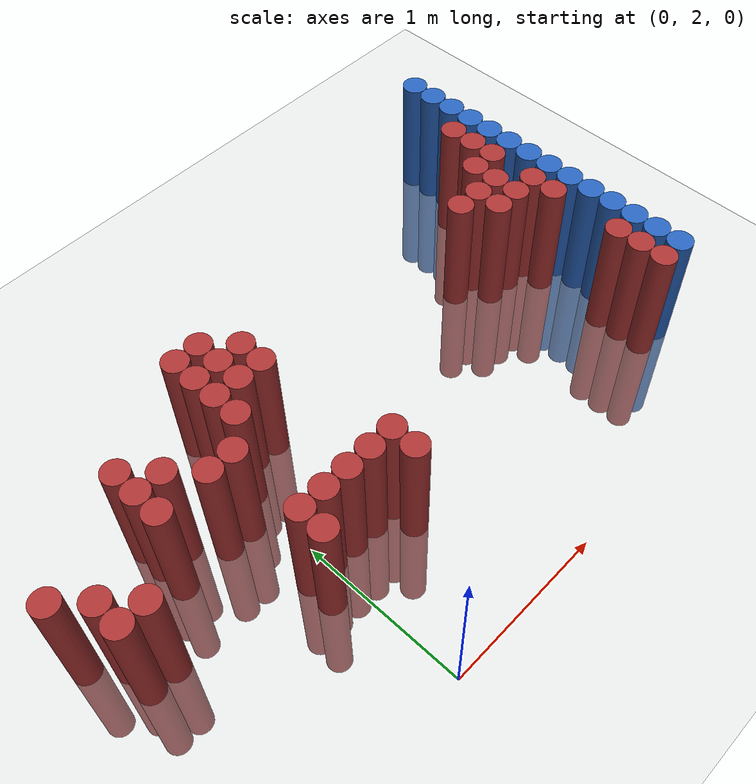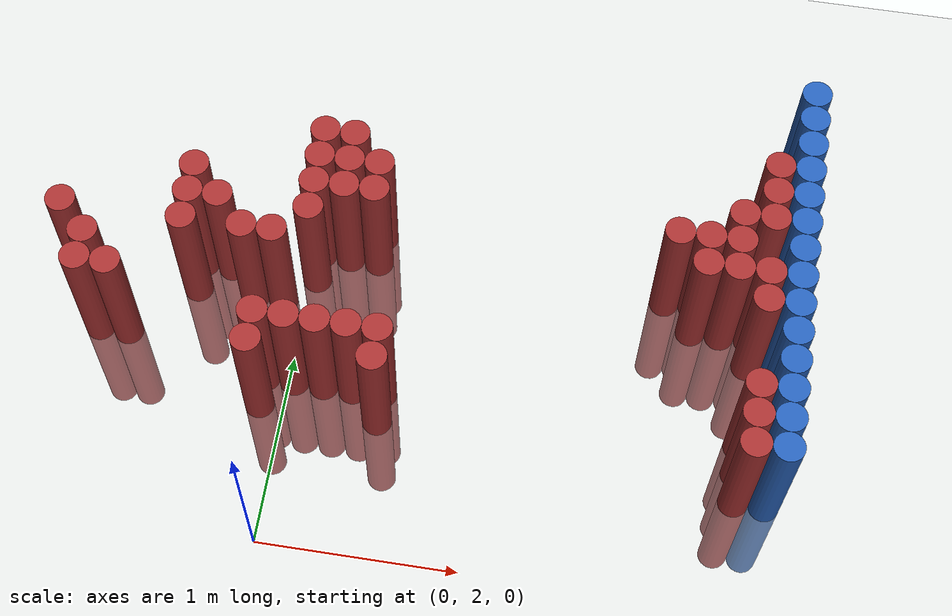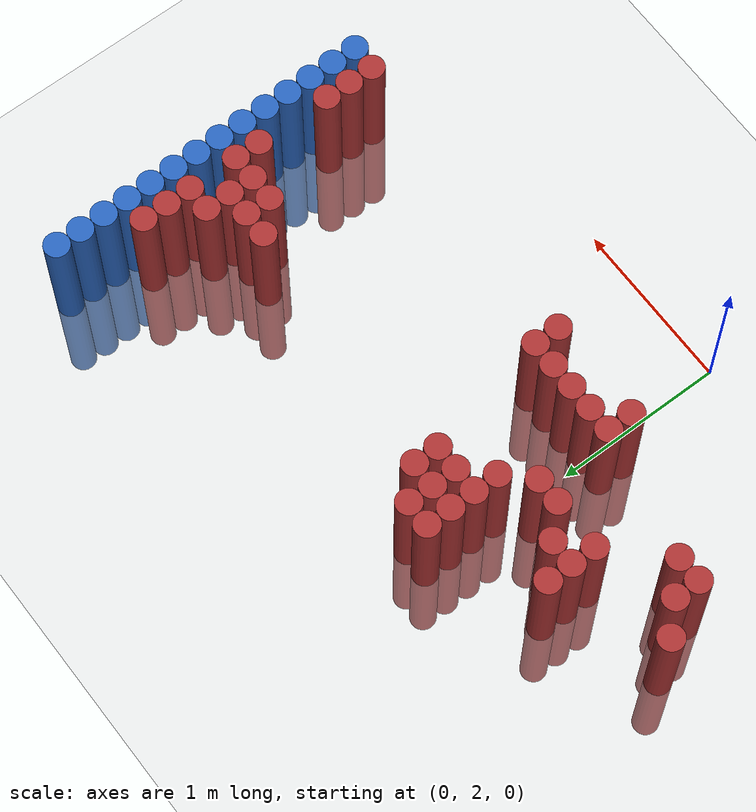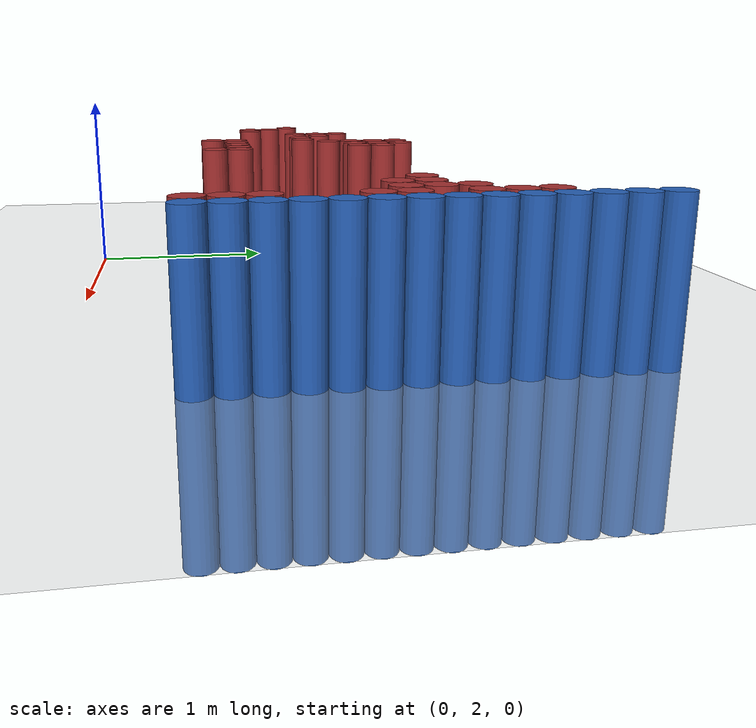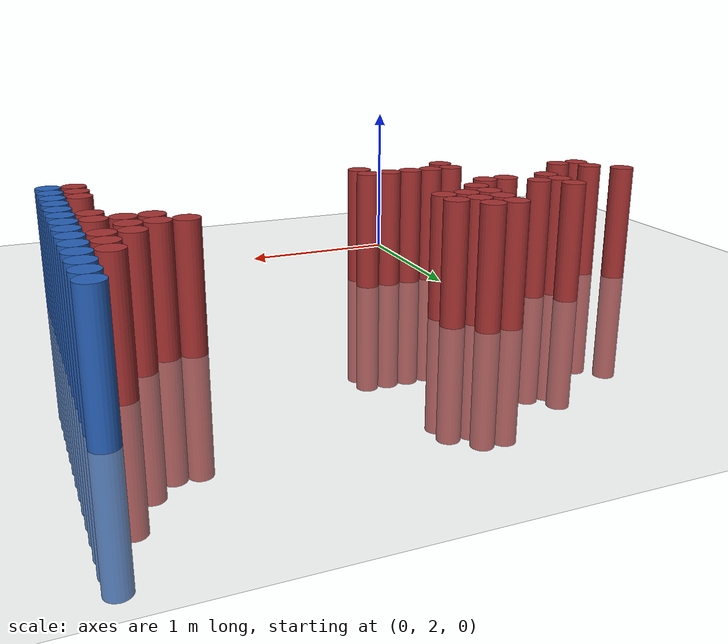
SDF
<sdf version="1.6">
 <world name="default">
  <model name="ground_plane">
   <static>1</static>
   <link name="link">
    <collision name="collision">
     <geometry><plane><normal>0 0 1</normal><size>100 100</size></plane></geometry>
     <surface><friction><ode><mu>100</mu><mu2>50</mu2></ode></friction></surface>
    </collision>
    <visual name="visual">
     <cast_shadows>0</cast_shadows>
     <geometry><plane><normal>0 0 1</normal><size>100 100</size></plane></geometry>
     <material>
      <script><uri>file://media/materials/scripts/gazebo.material</uri><name>Gazebo/Grey</name></script>
     </material>
    </visual>
   </link>
  </model>
  <model name="unit_cylinder_154">
   <static>1</static>
   <pose>-1.175000 3.325000 0.000000 0.000000 0.000000 0.000000</pose>
   <link name="link">
    <inertial>
     <mass>1</mass>
     <inertia><ixx>0.145833</ixx><ixy>0</ixy><ixz>0</ixz><iyy>0.145833</iyy><iyz>0</iyz><izz>0.125</izz></inertia>
    </inertial>
    <collision name="collision">
     <geometry><cylinder><radius>0.075000</radius><length>1.5</length></cylinder></geometry>
    </collision>
    <visual name="visual">
     <geometry><cylinder><radius>0.075000</radius><length>1.5</length></cylinder></geometry>
     <material>
      <ambient>0.648000 0.192000 0.192000 1</ambient>
      <diffuse>0.648000 0.192000 0.192000 1</diffuse>
     </material>
     <material>
      <script><name>Gazebo/Grey</name><uri>file://media/materials/scripts/gazebo.material</uri></script>
     </material>
    </visual>
   </link>
  </model>
  <model name="unit_cylinder_155">
   <static>1</static>
   <pose>-1.025000 3.025000 0.000000 0.000000 0.000000 0.000000</pose>
   <link name="link">
    <inertial>
     <mass>1</mass>
     <inertia><ixx>0.145833</ixx><ixy>0</ixy><ixz>0</ixz><iyy>0.145833</iyy><iyz>0</iyz><izz>0.125</izz></inertia>
    </inertial>
    <collision name="collision">
     <geometry><cylinder><radius>0.075000</radius><length>1.5</length></cylinder></geometry>
    </collision>
    <visual name="visual">
     <geometry><cylinder><radius>0.075000</radius><length>1.5</length></cylinder></geometry>
     <material>
      <ambient>0.648000 0.192000 0.192000 1</ambient>
      <diffuse>0.648000 0.192000 0.192000 1</diffuse>
     </material>
     <material>
      <script><name>Gazebo/Grey</name><uri>file://media/materials/scripts/gazebo.material</uri></script>
     </material>
    </visual>
   </link>
  </model>
  <model name="unit_cylinder_156">
   <static>1</static>
   <pose>-1.025000 3.175000 0.000000 0.000000 0.000000 0.000000</pose>
   <link name="link">
    <inertial>
     <mass>1</mass>
     <inertia><ixx>0.145833</ixx><ixy>0</ixy><ixz>0</ixz><iyy>0.145833</iyy><iyz>0</iyz><izz>0.125</izz></inertia>
    </inertial>
    <collision name="collision">
     <geometry><cylinder><radius>0.075000</radius><length>1.5</length></cylinder></geometry>
    </collision>
    <visual name="visual">
     <geometry><cylinder><radius>0.075000</radius><length>1.5</length></cylinder></geometry>
     <material>
      <ambient>0.648000 0.192000 0.192000 1</ambient>
      <diffuse>0.648000 0.192000 0.192000 1</diffuse>
     </material>
     <material>
      <script><name>Gazebo/Grey</name><uri>file://media/materials/scripts/gazebo.material</uri></script>
     </material>
    </visual>
   </link>
  </model>
  <model name="unit_cylinder_157">
   <static>1</static>
   <pose>-0.875000 3.025000 0.000000 0.000000 0.000000 0.000000</pose>
   <link name="link">
    <inertial>
     <mass>1</mass>
     <inertia><ixx>0.145833</ixx><ixy>0</ixy><ixz>0</ixz><iyy>0.145833</iyy><iyz>0</iyz><izz>0.125</izz></inertia>
    </inertial>
    <collision name="collision">
     <geometry><cylinder><radius>0.075000</radius><length>1.5</length></cylinder></geometry>
    </collision>
    <visual name="visual">
     <geometry><cylinder><radius>0.075000</radius><length>1.5</length></cylinder></geometry>
     <material>
      <ambient>0.648000 0.192000 0.192000 1</ambient>
      <diffuse>0.648000 0.192000 0.192000 1</diffuse>
     </material>
     <material>
      <script><name>Gazebo/Grey</name><uri>file://media/materials/scripts/gazebo.material</uri></script>
     </material>
    </visual>
   </link>
  </model>
  <model name="unit_cylinder_161">
   <static>1</static>
   <pose>-0.575000 3.325000 0.000000 0.000000 0.000000 0.000000</pose>
   <link name="link">
    <inertial>
     <mass>1</mass>
     <inertia><ixx>0.145833</ixx><ixy>0</ixy><ixz>0</ixz><iyy>0.145833</iyy><iyz>0</iyz><izz>0.125</izz></inertia>
    </inertial>
    <collision name="collision">
     <geometry><cylinder><radius>0.075000</radius><length>1.5</length></cylinder></geometry>
    </collision>
    <visual name="visual">
     <geometry><cylinder><radius>0.075000</radius><length>1.5</length></cylinder></geometry>
     <material>
      <ambient>0.648000 0.192000 0.192000 1</ambient>
      <diffuse>0.648000 0.192000 0.192000 1</diffuse>
     </material>
     <material>
      <script><name>Gazebo/Grey</name><uri>file://media/materials/scripts/gazebo.material</uri></script>
     </material>
    </visual>
   </link>
  </model>
  <model name="unit_cylinder_162">
   <static>1</static>
   <pose>-0.575000 3.475000 0.000000 0.000000 0.000000 0.000000</pose>
   <link name="link">
    <inertial>
     <mass>1</mass>
     <inertia><ixx>0.145833</ixx><ixy>0</ixy><ixz>0</ixz><iyy>0.145833</iyy><iyz>0</iyz><izz>0.125</izz></inertia>
    </inertial>
    <collision name="collision">
     <geometry><cylinder><radius>0.075000</radius><length>1.5</length></cylinder></geometry>
    </collision>
    <visual name="visual">
     <geometry><cylinder><radius>0.075000</radius><length>1.5</length></cylinder></geometry>
     <material>
      <ambient>0.648000 0.192000 0.192000 1</ambient>
      <diffuse>0.648000 0.192000 0.192000 1</diffuse>
     </material>
     <material>
      <script><name>Gazebo/Grey</name><uri>file://media/materials/scripts/gazebo.material</uri></script>
     </material>
    </visual>
   </link>
  </model>
  <model name="unit_cylinder_163">
   <static>1</static>
   <pose>-0.575000 3.625000 0.000000 0.000000 0.000000 0.000000</pose>
   <link name="link">
    <inertial>
     <mass>1</mass>
     <inertia><ixx>0.145833</ixx><ixy>0</ixy><ixz>0</ixz><iyy>0.145833</iyy><iyz>0</iyz><izz>0.125</izz></inertia>
    </inertial>
    <collision name="collision">
     <geometry><cylinder><radius>0.075000</radius><length>1.5</length></cylinder></geometry>
    </collision>
    <visual name="visual">
     <geometry><cylinder><radius>0.075000</radius><length>1.5</length></cylinder></geometry>
     <material>
      <ambient>0.648000 0.192000 0.192000 1</ambient>
      <diffuse>0.648000 0.192000 0.192000 1</diffuse>
     </material>
     <material>
      <script><name>Gazebo/Grey</name><uri>file://media/materials/scripts/gazebo.material</uri></script>
     </material>
    </visual>
   </link>
  </model>
  <model name="unit_cylinder_165">
   <static>1</static>
   <pose>-0.425000 3.475000 0.000000 0.000000 0.000000 0.000000</pose>
   <link name="link">
    <inertial>
     <mass>1</mass>
     <inertia><ixx>0.145833</ixx><ixy>0</ixy><ixz>0</ixz><iyy>0.145833</iyy><iyz>0</iyz><izz>0.125</izz></inertia>
    </inertial>
    <collision name="collision">
     <geometry><cylinder><radius>0.075000</radius><length>1.5</length></cylinder></geometry>
    </collision>
    <visual name="visual">
     <geometry><cylinder><radius>0.075000</radius><length>1.5</length></cylinder></geometry>
     <material>
      <ambient>0.648000 0.192000 0.192000 1</ambient>
      <diffuse>0.648000 0.192000 0.192000 1</diffuse>
     </material>
     <material>
      <script><name>Gazebo/Grey</name><uri>file://media/materials/scripts/gazebo.material</uri></script>
     </material>
    </visual>
   </link>
  </model>
  <model name="unit_cylinder_166">
   <static>1</static>
   <pose>-0.275000 3.325000 0.000000 0.000000 0.000000 0.000000</pose>
   <link name="link">
    <inertial>
     <mass>1</mass>
     <inertia><ixx>0.145833</ixx><ixy>0</ixy><ixz>0</ixz><iyy>0.145833</iyy><iyz>0</iyz><izz>0.125</izz></inertia>
    </inertial>
    <collision name="collision">
     <geometry><cylinder><radius>0.075000</radius><length>1.5</length></cylinder></geometry>
    </collision>
    <visual name="visual">
     <geometry><cylinder><radius>0.075000</radius><length>1.5</length></cylinder></geometry>
     <material>
      <ambient>0.648000 0.192000 0.192000 1</ambient>
      <diffuse>0.648000 0.192000 0.192000 1</diffuse>
     </material>
     <material>
      <script><name>Gazebo/Grey</name><uri>file://media/materials/scripts/gazebo.material</uri></script>
     </material>
    </visual>
   </link>
  </model>
  <model name="unit_cylinder_168">
   <static>1</static>
   <pose>-0.125000 2.725000 0.000000 0.000000 0.000000 0.000000</pose>
   <link name="link">
    <inertial>
     <mass>1</mass>
     <inertia><ixx>0.145833</ixx><ixy>0</ixy><ixz>0</ixz><iyy>0.145833</iyy><iyz>0</iyz><izz>0.125</izz></inertia>
    </inertial>
    <collision name="collision">
     <geometry><cylinder><radius>0.075000</radius><length>1.5</length></cylinder></geometry>
    </collision>
    <visual name="visual">
     <geometry><cylinder><radius>0.075000</radius><length>1.5</length></cylinder></geometry>
     <material>
      <ambient>0.648000 0.192000 0.192000 1</ambient>
      <diffuse>0.648000 0.192000 0.192000 1</diffuse>
     </material>
     <material>
      <script><name>Gazebo/Grey</name><uri>file://media/materials/scripts/gazebo.material</uri></script>
     </material>
    </visual>
   </link>
  </model>
  <model name="unit_cylinder_169">
   <static>1</static>
   <pose>-0.125000 2.875000 0.000000 0.000000 0.000000 0.000000</pose>
   <link name="link">
    <inertial>
     <mass>1</mass>
     <inertia><ixx>0.145833</ixx><ixy>0</ixy><ixz>0</ixz><iyy>0.145833</iyy><iyz>0</iyz><izz>0.125</izz></inertia>
    </inertial>
    <collision name="collision">
     <geometry><cylinder><radius>0.075000</radius><length>1.5</length></cylinder></geometry>
    </collision>
    <visual name="visual">
     <geometry><cylinder><radius>0.075000</radius><length>1.5</length></cylinder></geometry>
     <material>
      <ambient>0.648000 0.192000 0.192000 1</ambient>
      <diffuse>0.648000 0.192000 0.192000 1</diffuse>
     </material>
     <material>
      <script><name>Gazebo/Grey</name><uri>file://media/materials/scripts/gazebo.material</uri></script>
     </material>
    </visual>
   </link>
  </model>
  <model name="unit_cylinder_170">
   <static>1</static>
   <pose>-0.125000 3.325000 0.000000 0.000000 0.000000 0.000000</pose>
   <link name="link">
    <inertial>
     <mass>1</mass>
     <inertia><ixx>0.145833</ixx><ixy>0</ixy><ixz>0</ixz><iyy>0.145833</iyy><iyz>0</iyz><izz>0.125</izz></inertia>
    </inertial>
    <collision name="collision">
     <geometry><cylinder><radius>0.075000</radius><length>1.5</length></cylinder></geometry>
    </collision>
    <visual name="visual">
     <geometry><cylinder><radius>0.075000</radius><length>1.5</length></cylinder></geometry>
     <material>
      <ambient>0.648000 0.192000 0.192000 1</ambient>
      <diffuse>0.648000 0.192000 0.192000 1</diffuse>
     </material>
     <material>
      <script><name>Gazebo/Grey</name><uri>file://media/materials/scripts/gazebo.material</uri></script>
     </material>
    </visual>
   </link>
  </model>
  <model name="unit_cylinder_172">
   <static>1</static>
   <pose>0.025000 2.875000 0.000000 0.000000 0.000000 0.000000</pose>
   <link name="link">
    <inertial>
     <mass>1</mass>
     <inertia><ixx>0.145833</ixx><ixy>0</ixy><ixz>0</ixz><iyy>0.145833</iyy><iyz>0</iyz><izz>0.125</izz></inertia>
    </inertial>
    <collision name="collision">
     <geometry><cylinder><radius>0.075000</radius><length>1.5</length></cylinder></geometry>
    </collision>
    <visual name="visual">
     <geometry><cylinder><radius>0.075000</radius><length>1.5</length></cylinder></geometry>
     <material>
      <ambient>0.648000 0.192000 0.192000 1</ambient>
      <diffuse>0.648000 0.192000 0.192000 1</diffuse>
     </material>
     <material>
      <script><name>Gazebo/Grey</name><uri>file://media/materials/scripts/gazebo.material</uri></script>
     </material>
    </visual>
   </link>
  </model>
  <model name="unit_cylinder_173">
   <static>1</static>
   <pose>0.025000 3.475000 0.000000 0.000000 0.000000 0.000000</pose>
   <link name="link">
    <inertial>
     <mass>1</mass>
     <inertia><ixx>0.145833</ixx><ixy>0</ixy><ixz>0</ixz><iyy>0.145833</iyy><iyz>0</iyz><izz>0.125</izz></inertia>
    </inertial>
    <collision name="collision">
     <geometry><cylinder><radius>0.075000</radius><length>1.5</length></cylinder></geometry>
    </collision>
    <visual name="visual">
     <geometry><cylinder><radius>0.075000</radius><length>1.5</length></cylinder></geometry>
     <material>
      <ambient>0.648000 0.192000 0.192000 1</ambient>
      <diffuse>0.648000 0.192000 0.192000 1</diffuse>
     </material>
     <material>
      <script><name>Gazebo/Grey</name><uri>file://media/materials/scripts/gazebo.material</uri></script>
     </material>
    </visual>
   </link>
  </model>
  <model name="unit_cylinder_174">
   <static>1</static>
   <pose>0.025000 3.625000 0.000000 0.000000 0.000000 0.000000</pose>
   <link name="link">
    <inertial>
     <mass>1</mass>
     <inertia><ixx>0.145833</ixx><ixy>0</ixy><ixz>0</ixz><iyy>0.145833</iyy><iyz>0</iyz><izz>0.125</izz></inertia>
    </inertial>
    <collision name="collision">
     <geometry><cylinder><radius>0.075000</radius><length>1.5</length></cylinder></geometry>
    </collision>
    <visual name="visual">
     <geometry><cylinder><radius>0.075000</radius><length>1.5</length></cylinder></geometry>
     <material>
      <ambient>0.648000 0.192000 0.192000 1</ambient>
      <diffuse>0.648000 0.192000 0.192000 1</diffuse>
     </material>
     <material>
      <script><name>Gazebo/Grey</name><uri>file://media/materials/scripts/gazebo.material</uri></script>
     </material>
    </visual>
   </link>
  </model>
  <model name="unit_cylinder_175">
   <static>1</static>
   <pose>0.025000 3.775000 0.000000 0.000000 0.000000 0.000000</pose>
   <link name="link">
    <inertial>
     <mass>1</mass>
     <inertia><ixx>0.145833</ixx><ixy>0</ixy><ixz>0</ixz><iyy>0.145833</iyy><iyz>0</iyz><izz>0.125</izz></inertia>
    </inertial>
    <collision name="collision">
     <geometry><cylinder><radius>0.075000</radius><length>1.5</length></cylinder></geometry>
    </collision>
    <visual name="visual">
     <geometry><cylinder><radius>0.075000</radius><length>1.5</length></cylinder></geometry>
     <material>
      <ambient>0.648000 0.192000 0.192000 1</ambient>
      <diffuse>0.648000 0.192000 0.192000 1</diffuse>
     </material>
     <material>
      <script><name>Gazebo/Grey</name><uri>file://media/materials/scripts/gazebo.material</uri></script>
     </material>
    </visual>
   </link>
  </model>
  <model name="unit_cylinder_176">
   <static>1</static>
   <pose>0.025000 3.925000 0.000000 0.000000 0.000000 0.000000</pose>
   <link name="link">
    <inertial>
     <mass>1</mass>
     <inertia><ixx>0.145833</ixx><ixy>0</ixy><ixz>0</ixz><iyy>0.145833</iyy><iyz>0</iyz><izz>0.125</izz></inertia>
    </inertial>
    <collision name="collision">
     <geometry><cylinder><radius>0.075000</radius><length>1.5</length></cylinder></geometry>
    </collision>
    <visual name="visual">
     <geometry><cylinder><radius>0.075000</radius><length>1.5</length></cylinder></geometry>
     <material>
      <ambient>0.648000 0.192000 0.192000 1</ambient>
      <diffuse>0.648000 0.192000 0.192000 1</diffuse>
     </material>
     <material>
      <script><name>Gazebo/Grey</name><uri>file://media/materials/scripts/gazebo.material</uri></script>
     </material>
    </visual>
   </link>
  </model>
  <model name="unit_cylinder_178">
   <static>1</static>
   <pose>0.175000 2.875000 0.000000 0.000000 0.000000 0.000000</pose>
   <link name="link">
    <inertial>
     <mass>1</mass>
     <inertia><ixx>0.145833</ixx><ixy>0</ixy><ixz>0</ixz><iyy>0.145833</iyy><iyz>0</iyz><izz>0.125</izz></inertia>
    </inertial>
    <collision name="collision">
     <geometry><cylinder><radius>0.075000</radius><length>1.5</length></cylinder></geometry>
    </collision>
    <visual name="visual">
     <geometry><cylinder><radius>0.075000</radius><length>1.5</length></cylinder></geometry>
     <material>
      <ambient>0.648000 0.192000 0.192000 1</ambient>
      <diffuse>0.648000 0.192000 0.192000 1</diffuse>
     </material>
     <material>
      <script><name>Gazebo/Grey</name><uri>file://media/materials/scripts/gazebo.material</uri></script>
     </material>
    </visual>
   </link>
  </model>
  <model name="unit_cylinder_179">
   <static>1</static>
   <pose>0.175000 3.625000 0.000000 0.000000 0.000000 0.000000</pose>
   <link name="link">
    <inertial>
     <mass>1</mass>
     <inertia><ixx>0.145833</ixx><ixy>0</ixy><ixz>0</ixz><iyy>0.145833</iyy><iyz>0</iyz><izz>0.125</izz></inertia>
    </inertial>
    <collision name="collision">
     <geometry><cylinder><radius>0.075000</radius><length>1.5</length></cylinder></geometry>
    </collision>
    <visual name="visual">
     <geometry><cylinder><radius>0.075000</radius><length>1.5</length></cylinder></geometry>
     <material>
      <ambient>0.648000 0.192000 0.192000 1</ambient>
      <diffuse>0.648000 0.192000 0.192000 1</diffuse>
     </material>
     <material>
      <script><name>Gazebo/Grey</name><uri>file://media/materials/scripts/gazebo.material</uri></script>
     </material>
    </visual>
   </link>
  </model>
  <model name="unit_cylinder_180">
   <static>1</static>
   <pose>0.175000 3.775000 0.000000 0.000000 0.000000 0.000000</pose>
   <link name="link">
    <inertial>
     <mass>1</mass>
     <inertia><ixx>0.145833</ixx><ixy>0</ixy><ixz>0</ixz><iyy>0.145833</iyy><iyz>0</iyz><izz>0.125</izz></inertia>
    </inertial>
    <collision name="collision">
     <geometry><cylinder><radius>0.075000</radius><length>1.5</length></cylinder></geometry>
    </collision>
    <visual name="visual">
     <geometry><cylinder><radius>0.075000</radius><length>1.5</length></cylinder></geometry>
     <material>
      <ambient>0.648000 0.192000 0.192000 1</ambient>
      <diffuse>0.648000 0.192000 0.192000 1</diffuse>
     </material>
     <material>
      <script><name>Gazebo/Grey</name><uri>file://media/materials/scripts/gazebo.material</uri></script>
     </material>
    </visual>
   </link>
  </model>
  <model name="unit_cylinder_181">
   <static>1</static>
   <pose>0.175000 3.925000 0.000000 0.000000 0.000000 0.000000</pose>
   <link name="link">
    <inertial>
     <mass>1</mass>
     <inertia><ixx>0.145833</ixx><ixy>0</ixy><ixz>0</ixz><iyy>0.145833</iyy><iyz>0</iyz><izz>0.125</izz></inertia>
    </inertial>
    <collision name="collision">
     <geometry><cylinder><radius>0.075000</radius><length>1.5</length></cylinder></geometry>
    </collision>
    <visual name="visual">
     <geometry><cylinder><radius>0.075000</radius><length>1.5</length></cylinder></geometry>
     <material>
      <ambient>0.648000 0.192000 0.192000 1</ambient>
      <diffuse>0.648000 0.192000 0.192000 1</diffuse>
     </material>
     <material>
      <script><name>Gazebo/Grey</name><uri>file://media/materials/scripts/gazebo.material</uri></script>
     </material>
    </visual>
   </link>
  </model>
  <model name="unit_cylinder_185">
   <static>1</static>
   <pose>0.325000 2.875000 0.000000 0.000000 0.000000 0.000000</pose>
   <link name="link">
    <inertial>
     <mass>1</mass>
     <inertia><ixx>0.145833</ixx><ixy>0</ixy><ixz>0</ixz><iyy>0.145833</iyy><iyz>0</iyz><izz>0.125</izz></inertia>
    </inertial>
    <collision name="collision">
     <geometry><cylinder><radius>0.075000</radius><length>1.5</length></cylinder></geometry>
    </collision>
    <visual name="visual">
     <geometry><cylinder><radius>0.075000</radius><length>1.5</length></cylinder></geometry>
     <material>
      <ambient>0.648000 0.192000 0.192000 1</ambient>
      <diffuse>0.648000 0.192000 0.192000 1</diffuse>
     </material>
     <material>
      <script><name>Gazebo/Grey</name><uri>file://media/materials/scripts/gazebo.material</uri></script>
     </material>
    </visual>
   </link>
  </model>
  <model name="unit_cylinder_186">
   <static>1</static>
   <pose>0.325000 3.625000 0.000000 0.000000 0.000000 0.000000</pose>
   <link name="link">
    <inertial>
     <mass>1</mass>
     <inertia><ixx>0.145833</ixx><ixy>0</ixy><ixz>0</ixz><iyy>0.145833</iyy><iyz>0</iyz><izz>0.125</izz></inertia>
    </inertial>
    <collision name="collision">
     <geometry><cylinder><radius>0.075000</radius><length>1.5</length></cylinder></geometry>
    </collision>
    <visual name="visual">
     <geometry><cylinder><radius>0.075000</radius><length>1.5</length></cylinder></geometry>
     <material>
      <ambient>0.648000 0.192000 0.192000 1</ambient>
      <diffuse>0.648000 0.192000 0.192000 1</diffuse>
     </material>
     <material>
      <script><name>Gazebo/Grey</name><uri>file://media/materials/scripts/gazebo.material</uri></script>
     </material>
    </visual>
   </link>
  </model>
  <model name="unit_cylinder_187">
   <static>1</static>
   <pose>0.325000 3.775000 0.000000 0.000000 0.000000 0.000000</pose>
   <link name="link">
    <inertial>
     <mass>1</mass>
     <inertia><ixx>0.145833</ixx><ixy>0</ixy><ixz>0</ixz><iyy>0.145833</iyy><iyz>0</iyz><izz>0.125</izz></inertia>
    </inertial>
    <collision name="collision">
     <geometry><cylinder><radius>0.075000</radius><length>1.5</length></cylinder></geometry>
    </collision>
    <visual name="visual">
     <geometry><cylinder><radius>0.075000</radius><length>1.5</length></cylinder></geometry>
     <material>
      <ambient>0.648000 0.192000 0.192000 1</ambient>
      <diffuse>0.648000 0.192000 0.192000 1</diffuse>
     </material>
     <material>
      <script><name>Gazebo/Grey</name><uri>file://media/materials/scripts/gazebo.material</uri></script>
     </material>
    </visual>
   </link>
  </model>
  <model name="unit_cylinder_194">
   <static>1</static>
   <pose>0.475000 2.725000 0.000000 0.000000 0.000000 0.000000</pose>
   <link name="link">
    <inertial>
     <mass>1</mass>
     <inertia><ixx>0.145833</ixx><ixy>0</ixy><ixz>0</ixz><iyy>0.145833</iyy><iyz>0</iyz><izz>0.125</izz></inertia>
    </inertial>
    <collision name="collision">
     <geometry><cylinder><radius>0.075000</radius><length>1.5</length></cylinder></geometry>
    </collision>
    <visual name="visual">
     <geometry><cylinder><radius>0.075000</radius><length>1.5</length></cylinder></geometry>
     <material>
      <ambient>0.648000 0.192000 0.192000 1</ambient>
      <diffuse>0.648000 0.192000 0.192000 1</diffuse>
     </material>
     <material>
      <script><name>Gazebo/Grey</name><uri>file://media/materials/scripts/gazebo.material</uri></script>
     </material>
    </visual>
   </link>
  </model>
  <model name="unit_cylinder_195">
   <static>1</static>
   <pose>0.475000 2.875000 0.000000 0.000000 0.000000 0.000000</pose>
   <link name="link">
    <inertial>
     <mass>1</mass>
     <inertia><ixx>0.145833</ixx><ixy>0</ixy><ixz>0</ixz><iyy>0.145833</iyy><iyz>0</iyz><izz>0.125</izz></inertia>
    </inertial>
    <collision name="collision">
     <geometry><cylinder><radius>0.075000</radius><length>1.5</length></cylinder></geometry>
    </collision>
    <visual name="visual">
     <geometry><cylinder><radius>0.075000</radius><length>1.5</length></cylinder></geometry>
     <material>
      <ambient>0.648000 0.192000 0.192000 1</ambient>
      <diffuse>0.648000 0.192000 0.192000 1</diffuse>
     </material>
     <material>
      <script><name>Gazebo/Grey</name><uri>file://media/materials/scripts/gazebo.material</uri></script>
     </material>
    </visual>
   </link>
  </model>
  <model name="unit_cylinder_214">
   <static>1</static>
   <pose>1.825000 3.625000 0.000000 0.000000 0.000000 0.000000</pose>
   <link name="link">
    <inertial>
     <mass>1</mass>
     <inertia><ixx>0.145833</ixx><ixy>0</ixy><ixz>0</ixz><iyy>0.145833</iyy><iyz>0</iyz><izz>0.125</izz></inertia>
    </inertial>
    <collision name="collision">
     <geometry><cylinder><radius>0.075000</radius><length>1.5</length></cylinder></geometry>
    </collision>
    <visual name="visual">
     <geometry><cylinder><radius>0.075000</radius><length>1.5</length></cylinder></geometry>
     <material>
      <ambient>0.648000 0.192000 0.192000 1</ambient>
      <diffuse>0.648000 0.192000 0.192000 1</diffuse>
     </material>
     <material>
      <script><name>Gazebo/Grey</name><uri>file://media/materials/scripts/gazebo.material</uri></script>
     </material>
    </visual>
   </link>
  </model>
  <model name="unit_cylinder_215">
   <static>1</static>
   <pose>1.975000 3.475000 0.000000 0.000000 0.000000 0.000000</pose>
   <link name="link">
    <inertial>
     <mass>1</mass>
     <inertia><ixx>0.145833</ixx><ixy>0</ixy><ixz>0</ixz><iyy>0.145833</iyy><iyz>0</iyz><izz>0.125</izz></inertia>
    </inertial>
    <collision name="collision">
     <geometry><cylinder><radius>0.075000</radius><length>1.5</length></cylinder></geometry>
    </collision>
    <visual name="visual">
     <geometry><cylinder><radius>0.075000</radius><length>1.5</length></cylinder></geometry>
     <material>
      <ambient>0.648000 0.192000 0.192000 1</ambient>
      <diffuse>0.648000 0.192000 0.192000 1</diffuse>
     </material>
     <material>
      <script><name>Gazebo/Grey</name><uri>file://media/materials/scripts/gazebo.material</uri></script>
     </material>
    </visual>
   </link>
  </model>
  <model name="unit_cylinder_216">
   <static>1</static>
   <pose>1.975000 3.625000 0.000000 0.000000 0.000000 0.000000</pose>
   <link name="link">
    <inertial>
     <mass>1</mass>
     <inertia><ixx>0.145833</ixx><ixy>0</ixy><ixz>0</ixz><iyy>0.145833</iyy><iyz>0</iyz><izz>0.125</izz></inertia>
    </inertial>
    <collision name="collision">
     <geometry><cylinder><radius>0.075000</radius><length>1.5</length></cylinder></geometry>
    </collision>
    <visual name="visual">
     <geometry><cylinder><radius>0.075000</radius><length>1.5</length></cylinder></geometry>
     <material>
      <ambient>0.648000 0.192000 0.192000 1</ambient>
      <diffuse>0.648000 0.192000 0.192000 1</diffuse>
     </material>
     <material>
      <script><name>Gazebo/Grey</name><uri>file://media/materials/scripts/gazebo.material</uri></script>
     </material>
    </visual>
   </link>
  </model>
  <model name="unit_cylinder_221">
   <static>1</static>
   <pose>2.125000 3.475000 0.000000 0.000000 0.000000 0.000000</pose>
   <link name="link">
    <inertial>
     <mass>1</mass>
     <inertia><ixx>0.145833</ixx><ixy>0</ixy><ixz>0</ixz><iyy>0.145833</iyy><iyz>0</iyz><izz>0.125</izz></inertia>
    </inertial>
    <collision name="collision">
     <geometry><cylinder><radius>0.075000</radius><length>1.5</length></cylinder></geometry>
    </collision>
    <visual name="visual">
     <geometry><cylinder><radius>0.075000</radius><length>1.5</length></cylinder></geometry>
     <material>
      <ambient>0.648000 0.192000 0.192000 1</ambient>
      <diffuse>0.648000 0.192000 0.192000 1</diffuse>
     </material>
     <material>
      <script><name>Gazebo/Grey</name><uri>file://media/materials/scripts/gazebo.material</uri></script>
     </material>
    </visual>
   </link>
  </model>
  <model name="unit_cylinder_222">
   <static>1</static>
   <pose>2.125000 3.625000 0.000000 0.000000 0.000000 0.000000</pose>
   <link name="link">
    <inertial>
     <mass>1</mass>
     <inertia><ixx>0.145833</ixx><ixy>0</ixy><ixz>0</ixz><iyy>0.145833</iyy><iyz>0</iyz><izz>0.125</izz></inertia>
    </inertial>
    <collision name="collision">
     <geometry><cylinder><radius>0.075000</radius><length>1.5</length></cylinder></geometry>
    </collision>
    <visual name="visual">
     <geometry><cylinder><radius>0.075000</radius><length>1.5</length></cylinder></geometry>
     <material>
      <ambient>0.648000 0.192000 0.192000 1</ambient>
      <diffuse>0.648000 0.192000 0.192000 1</diffuse>
     </material>
     <material>
      <script><name>Gazebo/Grey</name><uri>file://media/materials/scripts/gazebo.material</uri></script>
     </material>
    </visual>
   </link>
  </model>
  <model name="unit_cylinder_223">
   <static>1</static>
   <pose>2.125000 3.775000 0.000000 0.000000 0.000000 0.000000</pose>
   <link name="link">
    <inertial>
     <mass>1</mass>
     <inertia><ixx>0.145833</ixx><ixy>0</ixy><ixz>0</ixz><iyy>0.145833</iyy><iyz>0</iyz><izz>0.125</izz></inertia>
    </inertial>
    <collision name="collision">
     <geometry><cylinder><radius>0.075000</radius><length>1.5</length></cylinder></geometry>
    </collision>
    <visual name="visual">
     <geometry><cylinder><radius>0.075000</radius><length>1.5</length></cylinder></geometry>
     <material>
      <ambient>0.648000 0.192000 0.192000 1</ambient>
      <diffuse>0.648000 0.192000 0.192000 1</diffuse>
     </material>
     <material>
      <script><name>Gazebo/Grey</name><uri>file://media/materials/scripts/gazebo.material</uri></script>
     </material>
    </visual>
   </link>
  </model>
  <model name="unit_cylinder_233">
   <static>1</static>
   <pose>2.275000 2.575000 0.000000 0.000000 0.000000 0.000000</pose>
   <link name="link">
    <inertial>
     <mass>1</mass>
     <inertia><ixx>0.145833</ixx><ixy>0</ixy><ixz>0</ixz><iyy>0.145833</iyy><iyz>0</iyz><izz>0.125</izz></inertia>
    </inertial>
    <collision name="collision">
     <geometry><cylinder><radius>0.075000</radius><length>1.5</length></cylinder></geometry>
    </collision>
    <visual name="visual">
     <geometry><cylinder><radius>0.075000</radius><length>1.5</length></cylinder></geometry>
     <material>
      <ambient>0.648000 0.192000 0.192000 1</ambient>
      <diffuse>0.648000 0.192000 0.192000 1</diffuse>
     </material>
     <material>
      <script><name>Gazebo/Grey</name><uri>file://media/materials/scripts/gazebo.material</uri></script>
     </material>
    </visual>
   </link>
  </model>
  <model name="unit_cylinder_234">
   <static>1</static>
   <pose>2.275000 2.725000 0.000000 0.000000 0.000000 0.000000</pose>
   <link name="link">
    <inertial>
     <mass>1</mass>
     <inertia><ixx>0.145833</ixx><ixy>0</ixy><ixz>0</ixz><iyy>0.145833</iyy><iyz>0</iyz><izz>0.125</izz></inertia>
    </inertial>
    <collision name="collision">
     <geometry><cylinder><radius>0.075000</radius><length>1.5</length></cylinder></geometry>
    </collision>
    <visual name="visual">
     <geometry><cylinder><radius>0.075000</radius><length>1.5</length></cylinder></geometry>
     <material>
      <ambient>0.648000 0.192000 0.192000 1</ambient>
      <diffuse>0.648000 0.192000 0.192000 1</diffuse>
     </material>
     <material>
      <script><name>Gazebo/Grey</name><uri>file://media/materials/scripts/gazebo.material</uri></script>
     </material>
    </visual>
   </link>
  </model>
  <model name="unit_cylinder_235">
   <static>1</static>
   <pose>2.275000 2.875000 0.000000 0.000000 0.000000 0.000000</pose>
   <link name="link">
    <inertial>
     <mass>1</mass>
     <inertia><ixx>0.145833</ixx><ixy>0</ixy><ixz>0</ixz><iyy>0.145833</iyy><iyz>0</iyz><izz>0.125</izz></inertia>
    </inertial>
    <collision name="collision">
     <geometry><cylinder><radius>0.075000</radius><length>1.5</length></cylinder></geometry>
    </collision>
    <visual name="visual">
     <geometry><cylinder><radius>0.075000</radius><length>1.5</length></cylinder></geometry>
     <material>
      <ambient>0.648000 0.192000 0.192000 1</ambient>
      <diffuse>0.648000 0.192000 0.192000 1</diffuse>
     </material>
     <material>
      <script><name>Gazebo/Grey</name><uri>file://media/materials/scripts/gazebo.material</uri></script>
     </material>
    </visual>
   </link>
  </model>
  <model name="unit_cylinder_236">
   <static>1</static>
   <pose>2.275000 3.325000 0.000000 0.000000 0.000000 0.000000</pose>
   <link name="link">
    <inertial>
     <mass>1</mass>
     <inertia><ixx>0.145833</ixx><ixy>0</ixy><ixz>0</ixz><iyy>0.145833</iyy><iyz>0</iyz><izz>0.125</izz></inertia>
    </inertial>
    <collision name="collision">
     <geometry><cylinder><radius>0.075000</radius><length>1.5</length></cylinder></geometry>
    </collision>
    <visual name="visual">
     <geometry><cylinder><radius>0.075000</radius><length>1.5</length></cylinder></geometry>
     <material>
      <ambient>0.648000 0.192000 0.192000 1</ambient>
      <diffuse>0.648000 0.192000 0.192000 1</diffuse>
     </material>
     <material>
      <script><name>Gazebo/Grey</name><uri>file://media/materials/scripts/gazebo.material</uri></script>
     </material>
    </visual>
   </link>
  </model>
  <model name="unit_cylinder_237">
   <static>1</static>
   <pose>2.275000 3.475000 0.000000 0.000000 0.000000 0.000000</pose>
   <link name="link">
    <inertial>
     <mass>1</mass>
     <inertia><ixx>0.145833</ixx><ixy>0</ixy><ixz>0</ixz><iyy>0.145833</iyy><iyz>0</iyz><izz>0.125</izz></inertia>
    </inertial>
    <collision name="collision">
     <geometry><cylinder><radius>0.075000</radius><length>1.5</length></cylinder></geometry>
    </collision>
    <visual name="visual">
     <geometry><cylinder><radius>0.075000</radius><length>1.5</length></cylinder></geometry>
     <material>
      <ambient>0.648000 0.192000 0.192000 1</ambient>
      <diffuse>0.648000 0.192000 0.192000 1</diffuse>
     </material>
     <material>
      <script><name>Gazebo/Grey</name><uri>file://media/materials/scripts/gazebo.material</uri></script>
     </material>
    </visual>
   </link>
  </model>
  <model name="unit_cylinder_238">
   <static>1</static>
   <pose>2.275000 3.775000 0.000000 0.000000 0.000000 0.000000</pose>
   <link name="link">
    <inertial>
     <mass>1</mass>
     <inertia><ixx>0.145833</ixx><ixy>0</ixy><ixz>0</ixz><iyy>0.145833</iyy><iyz>0</iyz><izz>0.125</izz></inertia>
    </inertial>
    <collision name="collision">
     <geometry><cylinder><radius>0.075000</radius><length>1.5</length></cylinder></geometry>
    </collision>
    <visual name="visual">
     <geometry><cylinder><radius>0.075000</radius><length>1.5</length></cylinder></geometry>
     <material>
      <ambient>0.648000 0.192000 0.192000 1</ambient>
      <diffuse>0.648000 0.192000 0.192000 1</diffuse>
     </material>
     <material>
      <script><name>Gazebo/Grey</name><uri>file://media/materials/scripts/gazebo.material</uri></script>
     </material>
    </visual>
   </link>
  </model>
  <model name="unit_cylinder_239">
   <static>1</static>
   <pose>2.275000 3.925000 0.000000 0.000000 0.000000 0.000000</pose>
   <link name="link">
    <inertial>
     <mass>1</mass>
     <inertia><ixx>0.145833</ixx><ixy>0</ixy><ixz>0</ixz><iyy>0.145833</iyy><iyz>0</iyz><izz>0.125</izz></inertia>
    </inertial>
    <collision name="collision">
     <geometry><cylinder><radius>0.075000</radius><length>1.5</length></cylinder></geometry>
    </collision>
    <visual name="visual">
     <geometry><cylinder><radius>0.075000</radius><length>1.5</length></cylinder></geometry>
     <material>
      <ambient>0.648000 0.192000 0.192000 1</ambient>
      <diffuse>0.648000 0.192000 0.192000 1</diffuse>
     </material>
     <material>
      <script><name>Gazebo/Grey</name><uri>file://media/materials/scripts/gazebo.material</uri></script>
     </material>
    </visual>
   </link>
  </model>
  <model name="unit_cylinder_240">
   <static>1</static>
   <pose>2.275000 4.075000 0.000000 0.000000 0.000000 0.000000</pose>
   <link name="link">
    <inertial>
     <mass>1</mass>
     <inertia><ixx>0.145833</ixx><ixy>0</ixy><ixz>0</ixz><iyy>0.145833</iyy><iyz>0</iyz><izz>0.125</izz></inertia>
    </inertial>
    <collision name="collision">
     <geometry><cylinder><radius>0.075000</radius><length>1.5</length></cylinder></geometry>
    </collision>
    <visual name="visual">
     <geometry><cylinder><radius>0.075000</radius><length>1.5</length></cylinder></geometry>
     <material>
      <ambient>0.648000 0.192000 0.192000 1</ambient>
      <diffuse>0.648000 0.192000 0.192000 1</diffuse>
     </material>
     <material>
      <script><name>Gazebo/Grey</name><uri>file://media/materials/scripts/gazebo.material</uri></script>
     </material>
    </visual>
   </link>
  </model>
  <model name="unit_cylinder_257">
   <static>1</static>
   <pose>2.425000 2.575000 0.000000 0.000000 0.000000 0.000000</pose>
   <link name="link">
    <inertial>
     <mass>1</mass>
     <inertia><ixx>0.145833</ixx><ixy>0</ixy><ixz>0</ixz><iyy>0.145833</iyy><iyz>0</iyz><izz>0.125</izz></inertia>
    </inertial>
    <collision name="collision">
     <geometry><cylinder><radius>0.075000</radius><length>1.5</length></cylinder></geometry>
    </collision>
    <visual name="visual">
     <geometry><cylinder><radius>0.075000</radius><length>1.5</length></cylinder></geometry>
     <material>
      <ambient>0.152000 0.379000 0.720000 1</ambient>
      <diffuse>0.152000 0.379000 0.720000 1</diffuse>
     </material>
     <material>
      <script><name>Gazebo/Grey</name><uri>file://media/materials/scripts/gazebo.material</uri></script>
     </material>
    </visual>
   </link>
  </model>
  <model name="unit_cylinder_258">
   <static>1</static>
   <pose>2.425000 2.725000 0.000000 0.000000 0.000000 0.000000</pose>
   <link name="link">
    <inertial>
     <mass>1</mass>
     <inertia><ixx>0.145833</ixx><ixy>0</ixy><ixz>0</ixz><iyy>0.145833</iyy><iyz>0</iyz><izz>0.125</izz></inertia>
    </inertial>
    <collision name="collision">
     <geometry><cylinder><radius>0.075000</radius><length>1.5</length></cylinder></geometry>
    </collision>
    <visual name="visual">
     <geometry><cylinder><radius>0.075000</radius><length>1.5</length></cylinder></geometry>
     <material>
      <ambient>0.152000 0.379000 0.720000 1</ambient>
      <diffuse>0.152000 0.379000 0.720000 1</diffuse>
     </material>
     <material>
      <script><name>Gazebo/Grey</name><uri>file://media/materials/scripts/gazebo.material</uri></script>
     </material>
    </visual>
   </link>
  </model>
  <model name="unit_cylinder_259">
   <static>1</static>
   <pose>2.425000 2.875000 0.000000 0.000000 0.000000 0.000000</pose>
   <link name="link">
    <inertial>
     <mass>1</mass>
     <inertia><ixx>0.145833</ixx><ixy>0</ixy><ixz>0</ixz><iyy>0.145833</iyy><iyz>0</iyz><izz>0.125</izz></inertia>
    </inertial>
    <collision name="collision">
     <geometry><cylinder><radius>0.075000</radius><length>1.5</length></cylinder></geometry>
    </collision>
    <visual name="visual">
     <geometry><cylinder><radius>0.075000</radius><length>1.5</length></cylinder></geometry>
     <material>
      <ambient>0.152000 0.379000 0.720000 1</ambient>
      <diffuse>0.152000 0.379000 0.720000 1</diffuse>
     </material>
     <material>
      <script><name>Gazebo/Grey</name><uri>file://media/materials/scripts/gazebo.material</uri></script>
     </material>
    </visual>
   </link>
  </model>
  <model name="unit_cylinder_260">
   <static>1</static>
   <pose>2.425000 3.025000 0.000000 0.000000 0.000000 0.000000</pose>
   <link name="link">
    <inertial>
     <mass>1</mass>
     <inertia><ixx>0.145833</ixx><ixy>0</ixy><ixz>0</ixz><iyy>0.145833</iyy><iyz>0</iyz><izz>0.125</izz></inertia>
    </inertial>
    <collision name="collision">
     <geometry><cylinder><radius>0.075000</radius><length>1.5</length></cylinder></geometry>
    </collision>
    <visual name="visual">
     <geometry><cylinder><radius>0.075000</radius><length>1.5</length></cylinder></geometry>
     <material>
      <ambient>0.152000 0.379000 0.720000 1</ambient>
      <diffuse>0.152000 0.379000 0.720000 1</diffuse>
     </material>
     <material>
      <script><name>Gazebo/Grey</name><uri>file://media/materials/scripts/gazebo.material</uri></script>
     </material>
    </visual>
   </link>
  </model>
  <model name="unit_cylinder_261">
   <static>1</static>
   <pose>2.425000 3.175000 0.000000 0.000000 0.000000 0.000000</pose>
   <link name="link">
    <inertial>
     <mass>1</mass>
     <inertia><ixx>0.145833</ixx><ixy>0</ixy><ixz>0</ixz><iyy>0.145833</iyy><iyz>0</iyz><izz>0.125</izz></inertia>
    </inertial>
    <collision name="collision">
     <geometry><cylinder><radius>0.075000</radius><length>1.5</length></cylinder></geometry>
    </collision>
    <visual name="visual">
     <geometry><cylinder><radius>0.075000</radius><length>1.5</length></cylinder></geometry>
     <material>
      <ambient>0.152000 0.379000 0.720000 1</ambient>
      <diffuse>0.152000 0.379000 0.720000 1</diffuse>
     </material>
     <material>
      <script><name>Gazebo/Grey</name><uri>file://media/materials/scripts/gazebo.material</uri></script>
     </material>
    </visual>
   </link>
  </model>
  <model name="unit_cylinder_262">
   <static>1</static>
   <pose>2.425000 3.325000 0.000000 0.000000 0.000000 0.000000</pose>
   <link name="link">
    <inertial>
     <mass>1</mass>
     <inertia><ixx>0.145833</ixx><ixy>0</ixy><ixz>0</ixz><iyy>0.145833</iyy><iyz>0</iyz><izz>0.125</izz></inertia>
    </inertial>
    <collision name="collision">
     <geometry><cylinder><radius>0.075000</radius><length>1.5</length></cylinder></geometry>
    </collision>
    <visual name="visual">
     <geometry><cylinder><radius>0.075000</radius><length>1.5</length></cylinder></geometry>
     <material>
      <ambient>0.152000 0.379000 0.720000 1</ambient>
      <diffuse>0.152000 0.379000 0.720000 1</diffuse>
     </material>
     <material>
      <script><name>Gazebo/Grey</name><uri>file://media/materials/scripts/gazebo.material</uri></script>
     </material>
    </visual>
   </link>
  </model>
  <model name="unit_cylinder_263">
   <static>1</static>
   <pose>2.425000 3.475000 0.000000 0.000000 0.000000 0.000000</pose>
   <link name="link">
    <inertial>
     <mass>1</mass>
     <inertia><ixx>0.145833</ixx><ixy>0</ixy><ixz>0</ixz><iyy>0.145833</iyy><iyz>0</iyz><izz>0.125</izz></inertia>
    </inertial>
    <collision name="collision">
     <geometry><cylinder><radius>0.075000</radius><length>1.5</length></cylinder></geometry>
    </collision>
    <visual name="visual">
     <geometry><cylinder><radius>0.075000</radius><length>1.5</length></cylinder></geometry>
     <material>
      <ambient>0.152000 0.379000 0.720000 1</ambient>
      <diffuse>0.152000 0.379000 0.720000 1</diffuse>
     </material>
     <material>
      <script><name>Gazebo/Grey</name><uri>file://media/materials/scripts/gazebo.material</uri></script>
     </material>
    </visual>
   </link>
  </model>
  <model name="unit_cylinder_264">
   <static>1</static>
   <pose>2.425000 3.625000 0.000000 0.000000 0.000000 0.000000</pose>
   <link name="link">
    <inertial>
     <mass>1</mass>
     <inertia><ixx>0.145833</ixx><ixy>0</ixy><ixz>0</ixz><iyy>0.145833</iyy><iyz>0</iyz><izz>0.125</izz></inertia>
    </inertial>
    <collision name="collision">
     <geometry><cylinder><radius>0.075000</radius><length>1.5</length></cylinder></geometry>
    </collision>
    <visual name="visual">
     <geometry><cylinder><radius>0.075000</radius><length>1.5</length></cylinder></geometry>
     <material>
      <ambient>0.152000 0.379000 0.720000 1</ambient>
      <diffuse>0.152000 0.379000 0.720000 1</diffuse>
     </material>
     <material>
      <script><name>Gazebo/Grey</name><uri>file://media/materials/scripts/gazebo.material</uri></script>
     </material>
    </visual>
   </link>
  </model>
  <model name="unit_cylinder_265">
   <static>1</static>
   <pose>2.425000 3.775000 0.000000 0.000000 0.000000 0.000000</pose>
   <link name="link">
    <inertial>
     <mass>1</mass>
     <inertia><ixx>0.145833</ixx><ixy>0</ixy><ixz>0</ixz><iyy>0.145833</iyy><iyz>0</iyz><izz>0.125</izz></inertia>
    </inertial>
    <collision name="collision">
     <geometry><cylinder><radius>0.075000</radius><length>1.5</length></cylinder></geometry>
    </collision>
    <visual name="visual">
     <geometry><cylinder><radius>0.075000</radius><length>1.5</length></cylinder></geometry>
     <material>
      <ambient>0.152000 0.379000 0.720000 1</ambient>
      <diffuse>0.152000 0.379000 0.720000 1</diffuse>
     </material>
     <material>
      <script><name>Gazebo/Grey</name><uri>file://media/materials/scripts/gazebo.material</uri></script>
     </material>
    </visual>
   </link>
  </model>
  <model name="unit_cylinder_266">
   <static>1</static>
   <pose>2.425000 3.925000 0.000000 0.000000 0.000000 0.000000</pose>
   <link name="link">
    <inertial>
     <mass>1</mass>
     <inertia><ixx>0.145833</ixx><ixy>0</ixy><ixz>0</ixz><iyy>0.145833</iyy><iyz>0</iyz><izz>0.125</izz></inertia>
    </inertial>
    <collision name="collision">
     <geometry><cylinder><radius>0.075000</radius><length>1.5</length></cylinder></geometry>
    </collision>
    <visual name="visual">
     <geometry><cylinder><radius>0.075000</radius><length>1.5</length></cylinder></geometry>
     <material>
      <ambient>0.152000 0.379000 0.720000 1</ambient>
      <diffuse>0.152000 0.379000 0.720000 1</diffuse>
     </material>
     <material>
      <script><name>Gazebo/Grey</name><uri>file://media/materials/scripts/gazebo.material</uri></script>
     </material>
    </visual>
   </link>
  </model>
  <model name="unit_cylinder_267">
   <static>1</static>
   <pose>2.425000 4.075000 0.000000 0.000000 0.000000 0.000000</pose>
   <link name="link">
    <inertial>
     <mass>1</mass>
     <inertia><ixx>0.145833</ixx><ixy>0</ixy><ixz>0</ixz><iyy>0.145833</iyy><iyz>0</iyz><izz>0.125</izz></inertia>
    </inertial>
    <collision name="collision">
     <geometry><cylinder><radius>0.075000</radius><length>1.5</length></cylinder></geometry>
    </collision>
    <visual name="visual">
     <geometry><cylinder><radius>0.075000</radius><length>1.5</length></cylinder></geometry>
     <material>
      <ambient>0.152000 0.379000 0.720000 1</ambient>
      <diffuse>0.152000 0.379000 0.720000 1</diffuse>
     </material>
     <material>
      <script><name>Gazebo/Grey</name><uri>file://media/materials/scripts/gazebo.material</uri></script>
     </material>
    </visual>
   </link>
  </model>
  <model name="unit_cylinder_268">
   <static>1</static>
   <pose>2.425000 4.225000 0.000000 0.000000 0.000000 0.000000</pose>
   <link name="link">
    <inertial>
     <mass>1</mass>
     <inertia><ixx>0.145833</ixx><ixy>0</ixy><ixz>0</ixz><iyy>0.145833</iyy><iyz>0</iyz><izz>0.125</izz></inertia>
    </inertial>
    <collision name="collision">
     <geometry><cylinder><radius>0.075000</radius><length>1.5</length></cylinder></geometry>
    </collision>
    <visual name="visual">
     <geometry><cylinder><radius>0.075000</radius><length>1.5</length></cylinder></geometry>
     <material>
      <ambient>0.152000 0.379000 0.720000 1</ambient>
      <diffuse>0.152000 0.379000 0.720000 1</diffuse>
     </material>
     <material>
      <script><name>Gazebo/Grey</name><uri>file://media/materials/scripts/gazebo.material</uri></script>
     </material>
    </visual>
   </link>
  </model>
  <model name="unit_cylinder_269">
   <static>1</static>
   <pose>2.425000 4.375000 0.000000 0.000000 0.000000 0.000000</pose>
   <link name="link">
    <inertial>
     <mass>1</mass>
     <inertia><ixx>0.145833</ixx><ixy>0</ixy><ixz>0</ixz><iyy>0.145833</iyy><iyz>0</iyz><izz>0.125</izz></inertia>
    </inertial>
    <collision name="collision">
     <geometry><cylinder><radius>0.075000</radius><length>1.5</length></cylinder></geometry>
    </collision>
    <visual name="visual">
     <geometry><cylinder><radius>0.075000</radius><length>1.5</length></cylinder></geometry>
     <material>
      <ambient>0.152000 0.379000 0.720000 1</ambient>
      <diffuse>0.152000 0.379000 0.720000 1</diffuse>
     </material>
     <material>
      <script><name>Gazebo/Grey</name><uri>file://media/materials/scripts/gazebo.material</uri></script>
     </material>
    </visual>
   </link>
  </model>
  <model name="unit_cylinder_270">
   <static>1</static>
   <pose>2.425000 4.525000 0.000000 0.000000 0.000000 0.000000</pose>
   <link name="link">
    <inertial>
     <mass>1</mass>
     <inertia><ixx>0.145833</ixx><ixy>0</ixy><ixz>0</ixz><iyy>0.145833</iyy><iyz>0</iyz><izz>0.125</izz></inertia>
    </inertial>
    <collision name="collision">
     <geometry><cylinder><radius>0.075000</radius><length>1.5</length></cylinder></geometry>
    </collision>
    <visual name="visual">
     <geometry><cylinder><radius>0.075000</radius><length>1.5</length></cylinder></geometry>
     <material>
      <ambient>0.152000 0.379000 0.720000 1</ambient>
      <diffuse>0.152000 0.379000 0.720000 1</diffuse>
     </material>
     <material>
      <script><name>Gazebo/Grey</name><uri>file://media/materials/scripts/gazebo.material</uri></script>
     </material>
    </visual>
   </link>
  </model>
 </world>
</sdf>
